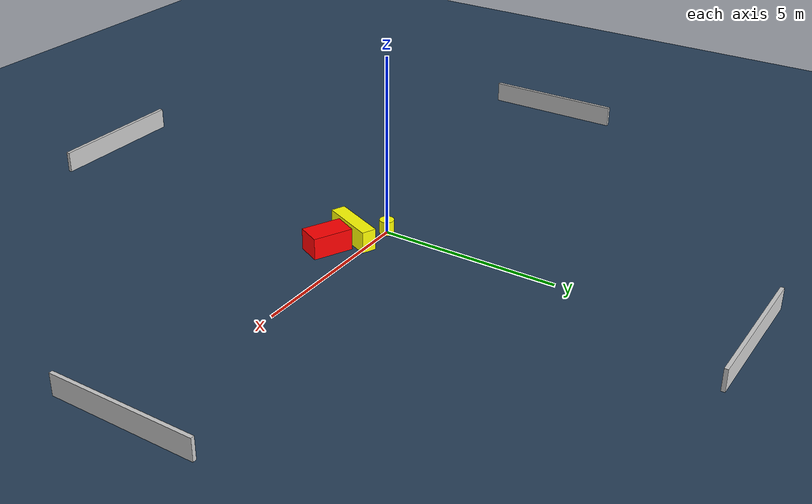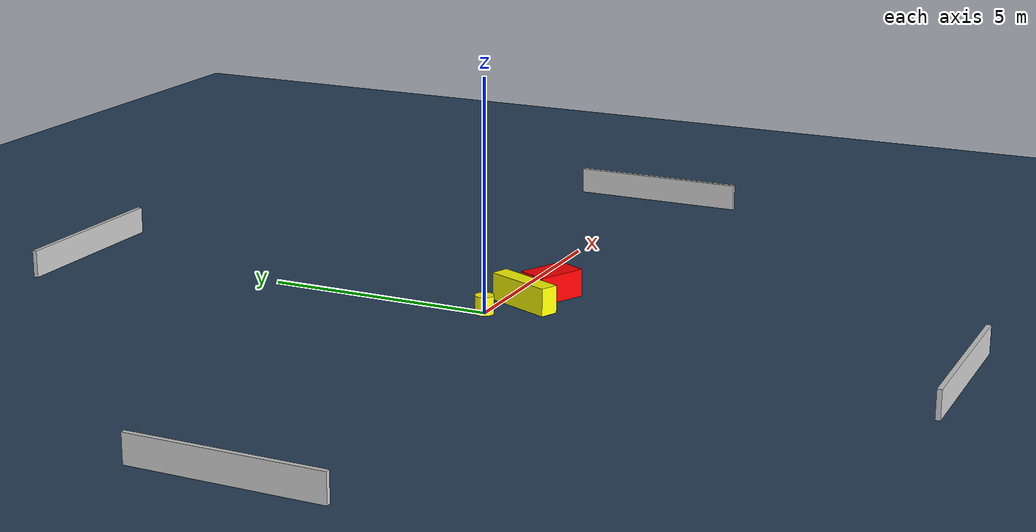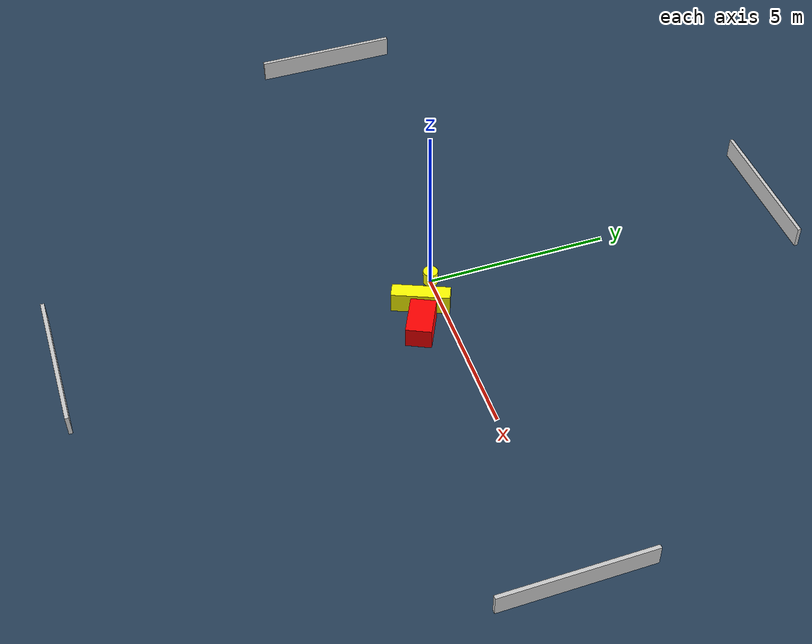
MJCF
<?xml version="1.0" ?>
<mujoco model="generated_environment">
  <option timestep="0.01" integrator="RK4" cone="elliptic"/>
  <default>
    <geom density="1"/>
  </default>
  <asset>
    <texture builtin="gradient" height="3072" name="skybox" rgb1="0.3 0.5 0.7" rgb2="0 0 0" type="skybox" width="512"/>
    <texture builtin="checker" height="300" name="groundplane" rgb1="0.2 0.3 0.4" rgb2="0.1 0.2 0.3" type="2d" width="300"/>
    <material name="groundplane" reflectance="0.2" texrepeat="5 5" texture="groundplane"/>
  </asset>
  <worldbody>
    <light dir="0 0 -1" directional="true" pos="0 0 1.5"/>
    <geom condim="3" friction="0.5 0.005 0.001" material="groundplane" name="floor" pos="0 0 0" size="0 0 0.05" type="plane"/>
    <body name="walls">
      <geom name="wall_1" condim="4" pos="-10.0 0.0 0.3" rgba="0.800000011920929 0.800000011920929 0.800000011920929 1.0" size="0.05 2.0 0.3" type="box"/>
      <geom name="wall_2" condim="4" pos="10.0 0.0 0.3" rgba="0.800000011920929 0.800000011920929 0.800000011920929 1.0" size="0.05 2.0 0.3" type="box"/>
      <geom name="wall_3" condim="4" pos="0.0 -10.0 0.3" rgba="0.800000011920929 0.800000011920929 0.800000011920929 1.0" size="2.0 0.05 0.3" type="box"/>
      <geom name="wall_4" condim="4" pos="0.0 10.0 0.3" rgba="0.800000011920929 0.800000011920929 0.800000011920929 1.0" size="2.0 0.05 0.3" type="box"/>
    </body>
    <body name="robot">
      <joint name="joint_x" type="slide" pos="0 0 0" axis="1 0 0"/>
      <joint name="joint_y" type="slide" pos="0 0 0" axis="0 1 0"/>
      <geom name="robot" type="cylinder" pos="0.0 0.0 0.2" size="0.2 0.2 0.0" mass="5.0" friction="1.0 0.005 0.0001" condim="4" rgba="1.0 1.0 0.0 1.0"/>
    </body>
    <body name="obstacle_1_movable">
      <geom name="obstacle_1_movable" condim="4" pos="0.7952038945753652 -0.5440818561701938 0.3" euler="0 0 66.57129154853358" friction="0.0 0.005 0.001" rgba="1.0 1.0 0.0 1.0" size="0.7779923109898743 0.20169301498762626 0.3" type="box" mass="0.1"/>
      <joint type="free"/>
    </body>
    <body name="obstacle_2_static">
      <geom name="obstacle_2_static" condim="4" pos="1.6070377536971867 -0.8144989515111285 0.3" euler="0 0 334.17416177755644" friction="0.0 0.005 0.001" rgba="1.0 0.0 0.0 1.0" size="0.5563463408884457 0.3433462298836961 0.3" type="box"/>
    </body>
  </worldbody>
  <actuator>
    <motor name="actuator_x" joint="joint_x" gear="1" ctrlrange="-1 1"/>
    <motor name="actuator_y" joint="joint_y" gear="1" ctrlrange="-1 1"/>
  </actuator>
</mujoco>
